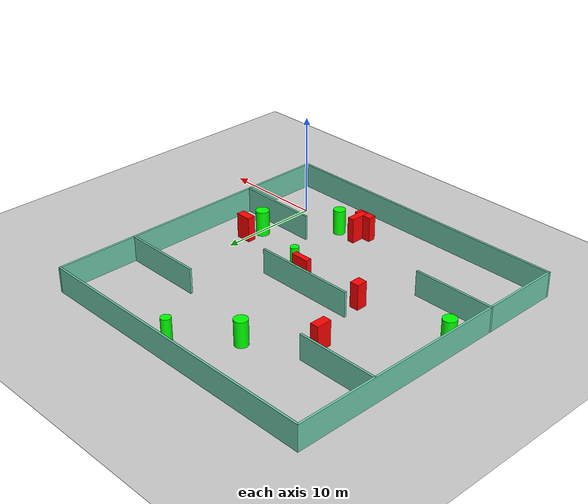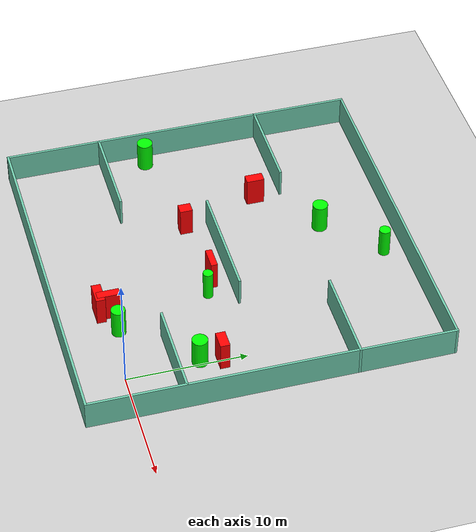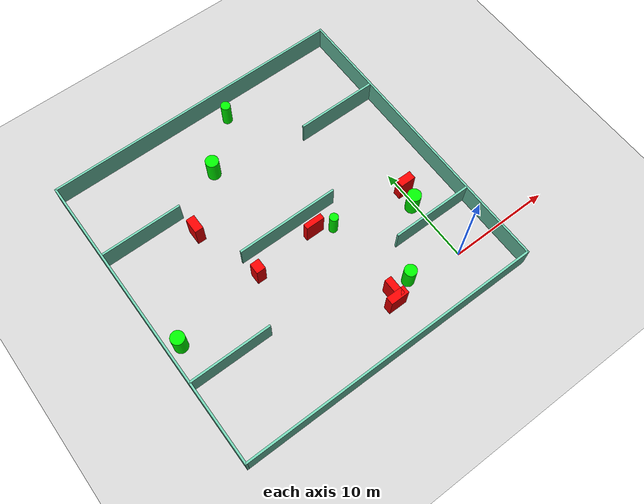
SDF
<sdf version="1.7">
 <world name="default">
  <light name="sun" type="directional">
   <pose>0 0 10 0 -0 0</pose>
   <diffuse>0.8 0.8 0.8 1</diffuse>
   <specular>0.2 0.2 0.2 1</specular>
   <attenuation>
    <range>1000</range>
    <constant>0.9</constant>
    <linear>0.01</linear>
    <quadratic>0.001</quadratic>
   </attenuation>
   <direction>-0.5 0.1 -0.9</direction>
   <spot><inner_angle>0</inner_angle><outer_angle>0</outer_angle><falloff>0</falloff></spot>
  </light>
  <model name="ground_plane">
   <static>1</static>
   <link name="link">
    <collision name="collision">
     <geometry><plane><normal>0 0 1</normal><size>100 100</size></plane></geometry>
     <surface>
      <contact><collide_bitmask>65535</collide_bitmask></contact>
      <friction><ode><mu>100</mu><mu2>50</mu2></ode></friction>
     </surface>
    </collision>
    <visual name="visual">
     <cast_shadows>0</cast_shadows>
     <geometry><plane><normal>0 0 1</normal><size>100 100</size></plane></geometry>
     <material>
      <script><uri>file://media/materials/scripts/gazebo.material</uri><name>Gazebo/Grey</name></script>
     </material>
    </visual>
   </link>
  </model>
  <gravity>0 0 -9.8</gravity>
  <magnetic_field>6e-06 2.3e-05 -4.2e-05</magnetic_field>
  <atmosphere type="adiabatic"/>
  <physics type="ode">
   <max_step_size>0.001</max_step_size>
   <real_time_factor>1</real_time_factor>
   <real_time_update_rate>1000</real_time_update_rate>
  </physics>
  <scene><ambient>0.4 0.4 0.4 1</ambient><background>0.7 0.7 0.7 1</background><shadows>1</shadows></scene>
  <spherical_coordinates>
   <surface_model>EARTH_WGS84</surface_model>
   <latitude_deg>0</latitude_deg>
   <longitude_deg>0</longitude_deg>
   <elevation>0</elevation>
   <heading_deg>0</heading_deg>
  </spherical_coordinates>
  <model name="my_base_walls">
   <link name="Wall_10">
    <collision name="Wall_10_Collision">
     <geometry><box><size>8.2 0.2 2.5</size></box></geometry>
     <pose>0 0 1.25 0 -0 0</pose>
    </collision>
    <visual name="Wall_10_Visual">
     <pose>0 0 1.25 0 -0 0</pose>
     <geometry><box><size>8.2 0.2 2.5</size></box></geometry>
     <material>
      <script><uri>file://media/materials/scripts/gazebo.material</uri><name>Gazebo/Grey</name></script>
      <ambient>0.435294 0.796078 0.67451 1</ambient>
     </material>
     <meta><layer>0</layer></meta>
    </visual>
    <pose>-11 -7 0 0 -0 0</pose>
   </link>
   <link name="Wall_12">
    <collision name="Wall_12_Collision">
     <geometry><box><size>8.2 0.2 2.5</size></box></geometry>
     <pose>0 0 1.25 0 -0 0</pose>
    </collision>
    <visual name="Wall_12_Visual">
     <pose>0 0 1.25 0 -0 0</pose>
     <geometry><box><size>8.2 0.2 2.5</size></box></geometry>
     <material>
      <script><uri>file://media/materials/scripts/gazebo.material</uri><name>Gazebo/Grey</name></script>
      <ambient>0.435294 0.796078 0.67451 1</ambient>
     </material>
     <meta><layer>0</layer></meta>
    </visual>
    <pose>-11 7 0 0 -0 0</pose>
   </link>
   <link name="Wall_14">
    <collision name="Wall_14_Collision">
     <geometry><box><size>8.2 0.2 2.5</size></box></geometry>
     <pose>0 0 1.25 0 -0 0</pose>
    </collision>
    <visual name="Wall_14_Visual">
     <pose>0 0 1.25 0 -0 0</pose>
     <geometry><box><size>8.2 0.2 2.5</size></box></geometry>
     <material>
      <script><uri>file://media/materials/scripts/gazebo.material</uri><name>Gazebo/Grey</name></script>
      <ambient>0.435294 0.796078 0.67451 1</ambient>
     </material>
     <meta><layer>0</layer></meta>
    </visual>
    <pose>11 7 0 0 -0 3.14159</pose>
   </link>
   <link name="Wall_16">
    <collision name="Wall_16_Collision">
     <geometry><box><size>10.2 0.2 2.5</size></box></geometry>
     <pose>0 0 1.25 0 -0 0</pose>
    </collision>
    <visual name="Wall_16_Visual">
     <pose>0 0 1.25 0 -0 0</pose>
     <geometry><box><size>10.2 0.2 2.5</size></box></geometry>
     <material>
      <script><uri>file://media/materials/scripts/gazebo.material</uri><name>Gazebo/Grey</name></script>
      <ambient>0.435294 0.796078 0.67451 1</ambient>
     </material>
     <meta><layer>0</layer></meta>
    </visual>
    <pose>0 0 0 0 -0 3.14159</pose>
   </link>
   <link name="Wall_2">
    <collision name="Wall_2_Collision">
     <geometry><box><size>30.2 0.2 2.5</size></box></geometry>
     <pose>0 0 1.25 0 -0 0</pose>
    </collision>
    <visual name="Wall_2_Visual">
     <pose>0 0 1.25 0 -0 0</pose>
     <geometry><box><size>30.2 0.2 2.5</size></box></geometry>
     <material>
      <script><uri>file://media/materials/scripts/gazebo.material</uri><name>Gazebo/Grey</name></script>
      <ambient>0.435294 0.796078 0.67451 1</ambient>
     </material>
     <meta><layer>0</layer></meta>
    </visual>
    <pose>0 -15 0 0 -0 3.14159</pose>
   </link>
   <link name="Wall_3">
    <collision name="Wall_3_Collision">
     <geometry><box><size>30.2 0.2 2.5</size></box></geometry>
     <pose>0 0 1.25 0 -0 0</pose>
    </collision>
    <visual name="Wall_3_Visual">
     <pose>0 0 1.25 0 -0 0</pose>
     <geometry><box><size>30.2 0.2 2.5</size></box></geometry>
     <material>
      <script><uri>file://media/materials/scripts/gazebo.material</uri><name>Gazebo/Grey</name></script>
      <ambient>0.435294 0.796078 0.67451 1</ambient>
     </material>
     <meta><layer>0</layer></meta>
    </visual>
    <pose>-15 0 0 0 -0 1.5708</pose>
   </link>
   <link name="Wall_4">
    <collision name="Wall_4_Collision">
     <geometry><box><size>30.2 0.2 2.5</size></box></geometry>
     <pose>0 0 1.25 0 -0 0</pose>
    </collision>
    <visual name="Wall_4_Visual">
     <pose>0 0 1.25 0 -0 0</pose>
     <geometry><box><size>30.2 0.2 2.5</size></box></geometry>
     <material>
      <script><uri>file://media/materials/scripts/gazebo.material</uri><name>Gazebo/Grey</name></script>
      <ambient>0.435294 0.796078 0.67451 1</ambient>
     </material>
     <meta><layer>0</layer></meta>
    </visual>
    <pose>0 15 0 0 -0 0</pose>
   </link>
   <link name="Wall_6">
    <collision name="Wall_6_Collision">
     <geometry><box><size>30.2 0.2 2.5</size></box></geometry>
     <pose>0 0 1.25 0 -0 0</pose>
    </collision>
    <visual name="Wall_6_Visual">
     <pose>0 0 1.25 0 -0 0</pose>
     <geometry><box><size>30.2 0.2 2.5</size></box></geometry>
     <material>
      <script><uri>file://media/materials/scripts/gazebo.material</uri><name>Gazebo/Grey</name></script>
      <ambient>0.435294 0.796078 0.67451 1</ambient>
     </material>
     <meta><layer>0</layer></meta>
    </visual>
    <pose>15 0 0 0 -0 1.5708</pose>
   </link>
   <link name="Wall_8">
    <collision name="Wall_8_Collision">
     <geometry><box><size>8.2 0.2 2.5</size></box></geometry>
     <pose>0 0 1.25 0 -0 0</pose>
    </collision>
    <visual name="Wall_8_Visual">
     <pose>0 0 1.25 0 -0 0</pose>
     <geometry><box><size>8.2 0.2 2.5</size></box></geometry>
     <material>
      <script><uri>file://media/materials/scripts/gazebo.material</uri><name>Gazebo/Grey</name></script>
      <ambient>0.435294 0.796078 0.67451 1</ambient>
     </material>
     <meta><layer>0</layer></meta>
    </visual>
    <pose>11 -7 0 0 -0 3.14159</pose>
   </link>
   <static>1</static>
   <pose>-11 11 0 0 -0 0</pose>
  </model>
  <model name="cylinder1">
   <static>1</static>
   <link name="link">
    <inertial>
     <mass>1</mass>
     <inertia><ixx>0.5</ixx><ixy>0</ixy><ixz>0</ixz><iyy>0.5</iyy><iyz>0</iyz><izz>1</izz></inertia>
    </inertial>
    <collision name="collision">
     <geometry><cylinder><radius>0.6606982646571207</radius><length>2.5</length></cylinder></geometry>
    </collision>
    <visual name="visual">
     <geometry><cylinder><radius>0.6606982646571207</radius><length>2.5</length></cylinder></geometry>
     <material>
      <ambient>0 1 0 1</ambient>
      <diffuse>0 1 0 1</diffuse>
      <specular>0.1 0.1 0.1 1</specular>
      <emissive>0 0 0 0</emissive>
     </material>
    </visual>
   </link>
   <pose>-24.738652970902617 7.762083852272603 1.25 0 0 0</pose>
  </model>
  <model name="cylinder2">
   <static>1</static>
   <link name="link">
    <inertial>
     <mass>1</mass>
     <inertia><ixx>0.5</ixx><ixy>0</ixy><ixz>0</ixz><iyy>0.5</iyy><iyz>0</iyz><izz>1</izz></inertia>
    </inertial>
    <collision name="collision">
     <geometry><cylinder><radius>0.41892570545017715</radius><length>2.5</length></cylinder></geometry>
    </collision>
    <visual name="visual">
     <geometry><cylinder><radius>0.41892570545017715</radius><length>2.5</length></cylinder></geometry>
     <material>
      <ambient>0 1 0 1</ambient>
      <diffuse>0 1 0 1</diffuse>
      <specular>0.1 0.1 0.1 1</specular>
      <emissive>0 0 0 0</emissive>
     </material>
    </visual>
   </link>
   <pose>-7.520041279786362 8.778074335786888 1.25 0 0 0</pose>
  </model>
  <model name="cylinder3">
   <static>1</static>
   <link name="link">
    <inertial>
     <mass>1</mass>
     <inertia><ixx>0.5</ixx><ixy>0</ixy><ixz>0</ixz><iyy>0.5</iyy><iyz>0</iyz><izz>1</izz></inertia>
    </inertial>
    <collision name="collision">
     <geometry><cylinder><radius>0.5929095317373709</radius><length>2.5</length></cylinder></geometry>
    </collision>
    <visual name="visual">
     <geometry><cylinder><radius>0.5929095317373709</radius><length>2.5</length></cylinder></geometry>
     <material>
      <ambient>0 1 0 1</ambient>
      <diffuse>0 1 0 1</diffuse>
      <specular>0.1 0.1 0.1 1</specular>
      <emissive>0 0 0 0</emissive>
     </material>
    </visual>
   </link>
   <pose>-5.300792804917087 0.7650062513747486 1.25 0 0 0</pose>
  </model>
  <model name="cylinder4">
   <static>1</static>
   <link name="link">
    <inertial>
     <mass>1</mass>
     <inertia><ixx>0.5</ixx><ixy>0</ixy><ixz>0</ixz><iyy>0.5</iyy><iyz>0</iyz><izz>1</izz></inertia>
    </inertial>
    <collision name="collision">
     <geometry><cylinder><radius>0.4764627988795952</radius><length>2.5</length></cylinder></geometry>
    </collision>
    <visual name="visual">
     <geometry><cylinder><radius>0.4764627988795952</radius><length>2.5</length></cylinder></geometry>
     <material>
      <ambient>0 1 0 1</ambient>
      <diffuse>0 1 0 1</diffuse>
      <specular>0.1 0.1 0.1 1</specular>
      <emissive>0 0 0 0</emissive>
     </material>
    </visual>
   </link>
   <pose>-8.63316342824853 24.267674363845817 1.25 0 0 0</pose>
  </model>
  <model name="cylinder5">
   <static>1</static>
   <link name="link">
    <inertial>
     <mass>1</mass>
     <inertia><ixx>0.5</ixx><ixy>0</ixy><ixz>0</ixz><iyy>0.5</iyy><iyz>0</iyz><izz>1</izz></inertia>
    </inertial>
    <collision name="collision">
     <geometry><cylinder><radius>0.6448948596179168</radius><length>2.5</length></cylinder></geometry>
    </collision>
    <visual name="visual">
     <geometry><cylinder><radius>0.6448948596179168</radius><length>2.5</length></cylinder></geometry>
     <material>
      <ambient>0 1 0 1</ambient>
      <diffuse>0 1 0 1</diffuse>
      <specular>0.1 0.1 0.1 1</specular>
      <emissive>0 0 0 0</emissive>
     </material>
    </visual>
   </link>
   <pose>-13.040366819008423 20.02563156270925 1.25 0 0 0</pose>
  </model>
  <model name="cylinder6">
   <static>1</static>
   <link name="link">
    <inertial>
     <mass>1</mass>
     <inertia><ixx>0.5</ixx><ixy>0</ixy><ixz>0</ixz><iyy>0.5</iyy><iyz>0</iyz><izz>1</izz></inertia>
    </inertial>
    <collision name="collision">
     <geometry><cylinder><radius>0.6532595043795657</radius><length>2.5</length></cylinder></geometry>
    </collision>
    <visual name="visual">
     <geometry><cylinder><radius>0.6532595043795657</radius><length>2.5</length></cylinder></geometry>
     <material>
      <ambient>0 1 0 1</ambient>
      <diffuse>0 1 0 1</diffuse>
      <specular>0.1 0.1 0.1 1</specular>
      <emissive>0 0 0 0</emissive>
     </material>
    </visual>
   </link>
   <pose>-0.35019066329185833 6.179290187572809 1.25 0 0 0</pose>
  </model>
  <model name="box1">
   <static>1</static>
   <link name="link">
    <inertial>
     <mass>1</mass>
     <inertia><ixx>0.083</ixx><ixy>0</ixy><ixz>0</ixz><iyy>0.083</iyy><iyz>0</iyz><izz>0.083</izz></inertia>
    </inertial>
    <collision name="collision">
     <geometry><box><size>1.8610366227294055 0.7728452382391751 2.5</size></box></geometry>
    </collision>
    <visual name="visual">
     <geometry><box><size>1.8610366227294055 0.7728452382391751 2.5</size></box></geometry>
     <material>
      <ambient>1 0 0 1</ambient>
      <diffuse>1 0 0 1</diffuse>
      <specular>0.1 0.1 0.1 1</specular>
      <emissive>0 0 0 0</emissive>
     </material>
    </visual>
    <sensor name="my_contact" type="contact">
     <contact><collision>box_collision</collision><topic>__default_topic__</topic></contact>
    </sensor>
   </link>
   <pose>-7.636469322983848 -0.3119734204088882 1.25 0 0 0</pose>
  </model>
  <model name="box2">
   <static>1</static>
   <link name="link">
    <inertial>
     <mass>1</mass>
     <inertia><ixx>0.083</ixx><ixy>0</ixy><ixz>0</ixz><iyy>0.083</iyy><iyz>0</iyz><izz>0.083</izz></inertia>
    </inertial>
    <collision name="collision">
     <geometry><box><size>1.8742629679276965 0.5485220596768647 2.5</size></box></geometry>
    </collision>
    <visual name="visual">
     <geometry><box><size>1.8742629679276965 0.5485220596768647 2.5</size></box></geometry>
     <material>
      <ambient>1 0 0 1</ambient>
      <diffuse>1 0 0 1</diffuse>
      <specular>0.1 0.1 0.1 1</specular>
      <emissive>0 0 0 0</emissive>
     </material>
    </visual>
    <sensor name="my_contact" type="contact">
     <contact><collision>box_collision</collision><topic>__default_topic__</topic></contact>
    </sensor>
   </link>
   <pose>-9.201607617657636 9.524206874120111 1.25 0 0 0</pose>
  </model>
  <model name="box3">
   <static>1</static>
   <link name="link">
    <inertial>
     <mass>1</mass>
     <inertia><ixx>0.083</ixx><ixy>0</ixy><ixz>0</ixz><iyy>0.083</iyy><iyz>0</iyz><izz>0.083</izz></inertia>
    </inertial>
    <collision name="collision">
     <geometry><box><size>0.6900627362938279 1.8922529753826756 2.5</size></box></geometry>
    </collision>
    <visual name="visual">
     <geometry><box><size>0.6900627362938279 1.8922529753826756 2.5</size></box></geometry>
     <material>
      <ambient>1 0 0 1</ambient>
      <diffuse>1 0 0 1</diffuse>
      <specular>0.1 0.1 0.1 1</specular>
      <emissive>0 0 0 0</emissive>
     </material>
    </visual>
    <sensor name="my_contact" type="contact">
     <contact><collision>box_collision</collision><topic>__default_topic__</topic></contact>
    </sensor>
   </link>
   <pose>-7.362473913953954 0.42450182521245816 1.25 0 0 0</pose>
  </model>
  <model name="box4">
   <static>1</static>
   <link name="link">
    <inertial>
     <mass>1</mass>
     <inertia><ixx>0.083</ixx><ixy>0</ixy><ixz>0</ixz><iyy>0.083</iyy><iyz>0</iyz><izz>0.083</izz></inertia>
    </inertial>
    <collision name="collision">
     <geometry><box><size>0.9219642059944452 1.0626892971910333 2.5</size></box></geometry>
    </collision>
    <visual name="visual">
     <geometry><box><size>0.9219642059944452 1.0626892971910333 2.5</size></box></geometry>
     <material>
      <ambient>1 0 0 1</ambient>
      <diffuse>1 0 0 1</diffuse>
      <specular>0.1 0.1 0.1 1</specular>
      <emissive>0 0 0 0</emissive>
     </material>
    </visual>
    <sensor name="my_contact" type="contact">
     <contact><collision>box_collision</collision><topic>__default_topic__</topic></contact>
    </sensor>
   </link>
   <pose>-15.666838349903044 8.998530757307034 1.25 0 0 0</pose>
  </model>
  <model name="box5">
   <static>1</static>
   <link name="link">
    <inertial>
     <mass>1</mass>
     <inertia><ixx>0.083</ixx><ixy>0</ixy><ixz>0</ixz><iyy>0.083</iyy><iyz>0</iyz><izz>0.083</izz></inertia>
    </inertial>
    <collision name="collision">
     <geometry><box><size>0.8466444535350461 1.5022966237937943 2.5</size></box></geometry>
    </collision>
    <visual name="visual">
     <geometry><box><size>0.8466444535350461 1.5022966237937943 2.5</size></box></geometry>
     <material>
      <ambient>1 0 0 1</ambient>
      <diffuse>1 0 0 1</diffuse>
      <specular>0.1 0.1 0.1 1</specular>
      <emissive>0 0 0 0</emissive>
     </material>
    </visual>
    <sensor name="my_contact" type="contact">
     <contact><collision>box_collision</collision><topic>__default_topic__</topic></contact>
    </sensor>
   </link>
   <pose>-17.82137561807901 15.65099005336127 1.25 0 0 0</pose>
  </model>
  <model name="box6">
   <static>1</static>
   <link name="link">
    <inertial>
     <mass>1</mass>
     <inertia><ixx>0.083</ixx><ixy>0</ixy><ixz>0</ixz><iyy>0.083</iyy><iyz>0</iyz><izz>0.083</izz></inertia>
    </inertial>
    <collision name="collision">
     <geometry><box><size>1.5484016674332064 0.8011307253922607 2.5</size></box></geometry>
    </collision>
    <visual name="visual">
     <geometry><box><size>1.5484016674332064 0.8011307253922607 2.5</size></box></geometry>
     <material>
      <ambient>1 0 0 1</ambient>
      <diffuse>1 0 0 1</diffuse>
      <specular>0.1 0.1 0.1 1</specular>
      <emissive>0 0 0 0</emissive>
     </material>
    </visual>
    <sensor name="my_contact" type="contact">
     <contact><collision>box_collision</collision><topic>__default_topic__</topic></contact>
    </sensor>
   </link>
   <pose>0.057080307906719696 7.920126917976566 1.25 0 0 0</pose>
  </model>
 </world>
</sdf>
